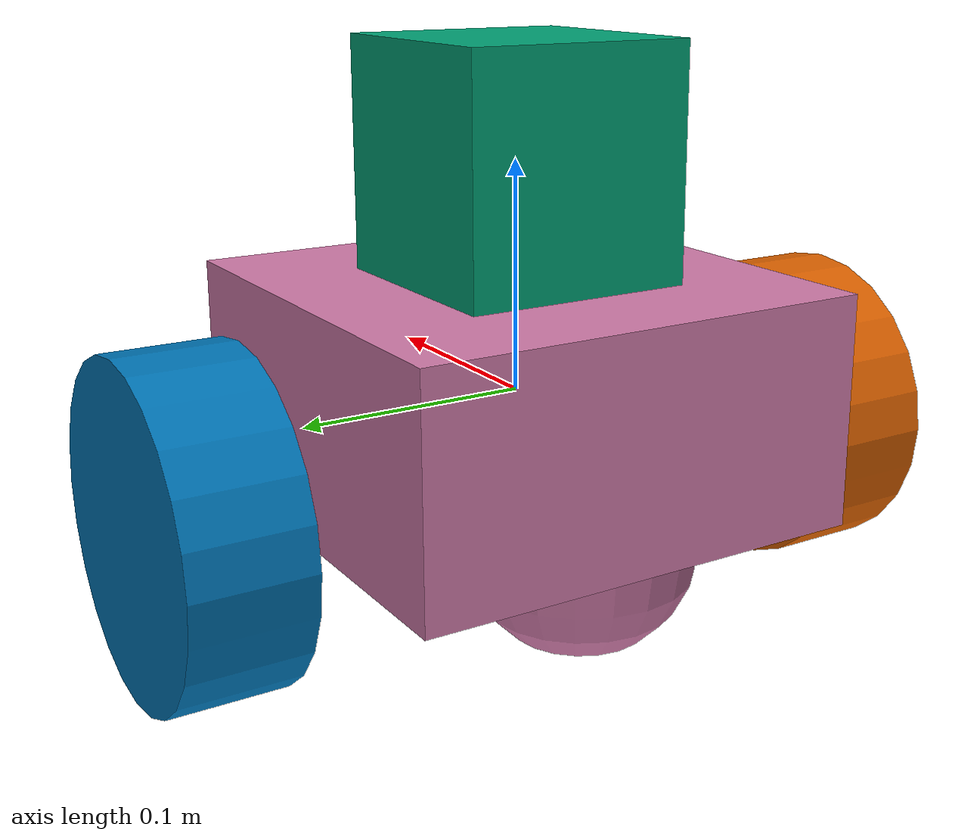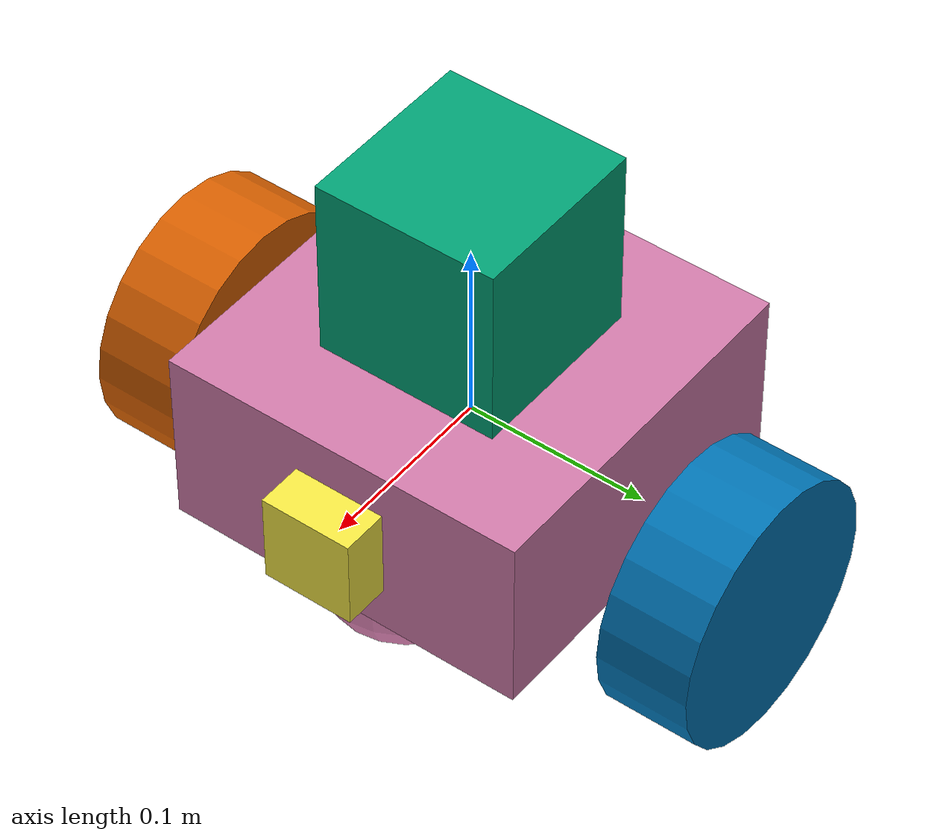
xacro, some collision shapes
<?xml version='1.0'?>

<robot name="udacity_bot" xmlns:xacro="http://www.ros.org/wiki/xacro">
  <xacro:include filename="$(find slam_project)/urdf/udacity_bot.gazebo" />

  <link name="robot_footprint"></link>

  <joint name="robot_footprint_joint" type="fixed">
    <origin xyz="0 0 0" rpy="0 0 0" />
    <parent link="robot_footprint"/>
    <child link="chassis" />
  </joint>

<joint type="fixed" name="camera_joint">
    <origin xyz="0 0 0" rpy="0 0 0"/>
    <child link="camera"/>
    <parent link="chassis"/>
    <axis xyz="0 1 0" rpy="0 0 0"/>
    <limit effort="10000" velocity="1000"/>
    <joint_properties damping="1.0" friction="1.0"/>
  </joint>

<joint type="fixed" name="hokuyo_joint">
    <origin xyz="0 0 .1" rpy="0 0 0"/>
    <child link="hokuyo"/>
    <parent link="chassis"/>
    <axis xyz="0 1 0" rpy="0 0 0"/>
    <limit effort="10000" velocity="1000"/>
    <joint_properties damping="1.0" friction="1.0"/>
  </joint>

<joint name="camera_rgbd_joint" type="fixed">
  <origin xyz="0 0 0" rpy="-1.5707 0 -1.5707"/>
  <parent link="camera"/>
  <child link="camera_rgbd_frame"/>
</joint>
<link name="camera_rgbd_frame"/>

<link name="hokuyo">
  <inertial>
      <mass value="0.1"/>
      <origin xyz="0 0 0" rpy=" 0 0 0"/>
      <inertia
          ixx="1e-6" ixy="0" ixz="0"
          iyy="1e-6" iyz="0"
          izz="1e-6"
      />
    </inertial>

    <collision name='hokuyo_collision'>
       <origin xyz="0 0 0" rpy=" 0 0 0"/>
      <geometry>
        <box size="0.1 0.1 0.1" />
      </geometry>
    </collision>

    <visual name='hokuyo_visual'>
      <origin xyz="0 0 0" rpy=" 0 0 0"/>
      <geometry>
         <mesh filename="package://slam_project/meshes/hokuyo.dae"/>
      </geometry>
    </visual>
</link>

<link name="camera">
  <inertial>
      <mass value="0.1"/>
      <origin xyz="0.1 0 0" rpy=" 0 0 0"/>
      <inertia
          ixx="1e-6" ixy="0" ixz="0"
          iyy="1e-6" iyz="0"
          izz="1e-6"
      />
    </inertial>

    <collision name='camera_collision'>
       <origin xyz="0.1 0 0" rpy=" 0 0 0"/>
      <geometry>
        <box size="0.05 0.05 0.05" />
      </geometry>
    </collision>

    <visual name='camera_visual'>
      <origin xyz="0.1 0 0" rpy=" 0 0 0"/>
      <geometry>
         <box size="0.05 0.05 0.05" />
      </geometry>
    </visual>
</link>

  <link name="left_wheel">
    <inertial>
      <mass value="1"/>
      <origin xyz="0 0 0" rpy=" 0 1.5707 1.5707"/>
      <inertia
          ixx="0.1" ixy="0" ixz="0"
          iyy="0.1" iyz="0"
          izz="0.1"
      />
    </inertial>

    <collision name='left_collision'>
      <origin xyz="0 0 0" rpy=" 0 1.5707 1.5707"/>
      <geometry>
         <cylinder length="0.05" radius="0.07"/>
      </geometry>
    </collision>

    <visual name='left_wheel_visual'>
      <origin xyz="0 0 0" rpy=" 0 1.5707 1.5707"/>
      <geometry>
         <cylinder length="0.05" radius="0.07"/>
      </geometry>
    </visual>
  </link>

  <link name="right_wheel">
    <inertial>
      <mass value="1"/>
      <origin xyz="0 0 0" rpy=" 0 1.5707 1.5707"/>
      <inertia
          ixx="0.1" ixy="0" ixz="0"
          iyy="0.1" iyz="0"
          izz="0.1"
      />
    </inertial>

    <collision name='right_collision'>
      <origin xyz="0 0 0" rpy=" 0 1.5707 1.5707"/>
      <geometry>
        <cylinder length="0.05" radius="0.07"/>
      </geometry>
    </collision>

    <visual name='right_wheel_visual'>
      <origin xyz="0 0 0" rpy=" 0 1.5707 1.5707"/>
      <geometry>
         <cylinder length="0.05" radius="0.07"/>
      </geometry>
    </visual>
  </link>

<joint type="continuous" name="left_wheel_hinge">
    <origin xyz="0 0.15 -.03" rpy="0 0 0"/>
    <child link="left_wheel"/>
    <parent link="chassis"/>
    <axis xyz="0 1 0" rpy="0 0 0"/>
    <limit effort="10000" velocity="1000"/>
    <joint_properties damping="1.0" friction="1.0"/>
  </joint>

<joint type="continuous" name="right_wheel_hinge">
    <origin xyz="0 -0.15 -0.03" rpy="0 0 0"/>
    <child link="right_wheel"/>
    <parent link="chassis"/>
    <axis xyz="0 1 0" rpy="0 0 0"/>
    <limit effort="10000" velocity="1000"/>
    <joint_properties damping="1.0" friction="1.0"/>
  </joint>

  <link name='chassis'>
    <pose>0 0 0.1 0 0 0</pose>

    <inertial>
      <mass value="4.0"/>
      <origin xyz="0.0 0 0" rpy=" 0 0 0"/>
      <inertia
          ixx="0.1" ixy="0" ixz="0"
          iyy="0.1" iyz="0"
          izz="0.1"
      />
    </inertial>

    <collision name='collision'>
      <origin xyz="0 0 0" rpy=" 0 0 0"/>
      <geometry>
        <box size=".2 .2 .1"/>
      </geometry>
    </collision>

    <visual name='chassis_visual'>
      <origin xyz="0 0 0" rpy=" 0 0 0"/>
      <geometry>
        <box size=".2 .2 .1"/>
      </geometry>
    </visual>

    <collision name='front_caster_collision'>
      <origin xyz="0.05 0 -0.05" rpy=" 0 0 0"/>
      <geometry>
        <sphere radius="0.0499"/>
      </geometry>
      <surface>
        <friction>
          <ode>
            <mu>0</mu>
            <mu2>0</mu2>
            <slip1>1.0</slip1>
            <slip2>1.0</slip2>
          </ode>
        </friction>
      </surface>
    </collision>

    <visual name='front_caster_visual'>
      <origin xyz="0.05 0 -0.05" rpy=" 0 0 0"/>
      <geometry>
        <sphere radius="0.05"/>
      </geometry>
    </visual>

    <collision name='back_caster_collision'>
      <origin xyz="-0.05 0 -0.05" rpy=" 0 0 0"/>
      <geometry>
        <sphere radius="0.0499"/>
      </geometry>
      <surface>
        <friction>
          <ode>
            <mu>0</mu>
            <mu2>0</mu2>
            <slip1>1.0</slip1>
            <slip2>1.0</slip2>
          </ode>
        </friction>
      </surface>
    </collision>

    <visual name='back_caster_visual'>
      <origin xyz="-0.05 0 -0.05" rpy=" 0 0 0"/>
      <geometry>
        <sphere radius="0.05"/>
      </geometry>
    </visual>

  </link>

</robot>
